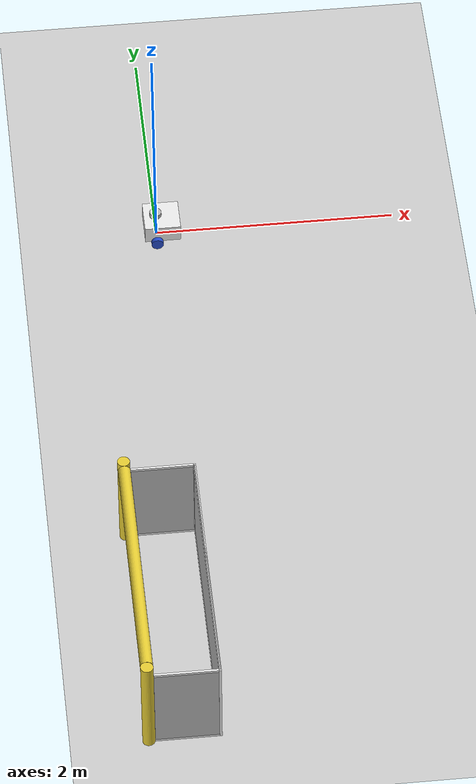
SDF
<sdf version="1.7">
 <world name="default">
  <light name="sun" type="directional">
   <pose>0 0 10 0 -0 0</pose>
   <diffuse>0.8 0.8 0.8 1</diffuse>
   <specular>0.2 0.2 0.2 1</specular>
   <attenuation>
    <range>1000</range>
    <constant>0.9</constant>
    <linear>0.01</linear>
    <quadratic>0.001</quadratic>
   </attenuation>
   <direction>-0.5 0.1 -0.9</direction>
   <spot><inner_angle>0</inner_angle><outer_angle>0</outer_angle><falloff>0</falloff></spot>
  </light>
  <model name="ground_plane">
   <static>1</static>
   <link name="link">
    <collision name="collision">
     <geometry><plane><normal>0 0 1</normal><size>100 100</size></plane></geometry>
     <surface>
      <contact><collide_bitmask>65535</collide_bitmask></contact>
      <friction><ode><mu>100</mu><mu2>50</mu2></ode></friction>
     </surface>
    </collision>
    <visual name="visual">
     <cast_shadows>0</cast_shadows>
     <geometry><plane><normal>0 0 1</normal><size>100 100</size></plane></geometry>
     <material>
      <script><uri>file://media/materials/scripts/gazebo.material</uri><name>Gazebo/Grey</name></script>
     </material>
    </visual>
   </link>
  </model>
  <gravity>0 0 -9.8</gravity>
  <magnetic_field>6e-06 2.3e-05 -4.2e-05</magnetic_field>
  <atmosphere type="adiabatic"/>
  <physics type="ode">
   <max_step_size>0.001</max_step_size>
   <real_time_factor>1</real_time_factor>
   <real_time_update_rate>1000</real_time_update_rate>
  </physics>
  <scene><ambient>0.4 0.4 0.4 1</ambient><background>0.7 0.7 0.7 1</background><shadows>1</shadows></scene>
  <audio><device>default</device></audio>
  <spherical_coordinates>
   <surface_model>EARTH_WGS84</surface_model>
   <latitude_deg>0</latitude_deg>
   <longitude_deg>0</longitude_deg>
   <elevation>0</elevation>
   <heading_deg>0</heading_deg>
  </spherical_coordinates>
  <model name="my_bot">
   <link name="base_link">
    <inertial>
     <pose>0.024375 0 0.132813 0 -0 0</pose>
     <mass>1.6</mass>
     <inertia>
      <ixx>0.0107607</ixx>
      <ixy>0</ixy>
      <ixz>0.00330469</ixz>
      <iyy>0.0130201</iyy>
      <iyz>0</iyz>
      <izz>0.0111094</izz>
     </inertia>
    </inertial>
    <collision name="base_link_fixed_joint_lump__chassis_collision">
     <pose>0.05 0 0.075 0 -0 0</pose>
     <geometry><box><size>0.3 0.3 0.15</size></box></geometry>
    </collision>
    <collision name="base_link_fixed_joint_lump__caster_wheel_collision_1">
     <pose>0.14 0 0 0 -0 0</pose>
     <geometry><sphere><radius>0.05</radius></sphere></geometry>
     <surface><friction><ode><mu>0.001</mu><mu2>0.001</mu2></ode></friction></surface>
    </collision>
    <collision name="base_link_fixed_joint_lump__laser_frame_collision_2">
     <pose>0 0 0.175 0 -0 0</pose>
     <geometry><cylinder><length>0.04</length><radius>0.05</radius></cylinder></geometry>
    </collision>
    <visual name="base_link_fixed_joint_lump__chassis_visual">
     <pose>0.05 0 0.075 0 -0 0</pose>
     <geometry><box><size>0.3 0.3 0.15</size></box></geometry>
     <material>
      <script><name>Gazebo/White</name><uri>file://media/materials/scripts/gazebo.material</uri></script>
     </material>
    </visual>
    <visual name="base_link_fixed_joint_lump__caster_wheel_visual_1">
     <pose>0.14 0 0 0 -0 0</pose>
     <geometry><sphere><radius>0.05</radius></sphere></geometry>
     <material>
      <script><name>Gazebo/Black</name><uri>file://media/materials/scripts/gazebo.material</uri></script>
     </material>
    </visual>
    <visual name="base_link_fixed_joint_lump__laser_frame_visual_2">
     <pose>0 0 0.175 0 -0 0</pose>
     <geometry><cylinder><length>0.04</length><radius>0.05</radius></cylinder></geometry>
    </visual>
    <sensor name="laser" type="ray">
     <visualize>1</visualize>
     <update_rate>10</update_rate>
     <ray>
      <scan>
       <horizontal>
        <samples>360</samples>
        <min_angle>-3.14</min_angle>
        <max_angle>3.14</max_angle>
        <resolution>1</resolution>
       </horizontal>
       <vertical><samples>1</samples><min_angle>0</min_angle><max_angle>0</max_angle></vertical>
      </scan>
      <range><min>0.3</min><max>12</max></range>
     </ray>
     <plugin name="laser_controller" filename="libgazebo_ros_ray_sensor.so">
      <ros><argument>~out:=scan</argument></ros>
      <output_type>sensor_msg/LaserScan</output_type>
      <frame_name>laser_frame</frame_name>
     </plugin>
     <pose>0 0 0.175 0 -0 0</pose>
    </sensor>
   </link>
   <joint name="left_wheel_joint" type="revolute">
    <pose relative_to="base_link">0 0.175 0 -1.5708 0 0</pose>
    <parent>base_link</parent>
    <child>left_wheel</child>
    <axis>
     <xyz>0 0 1</xyz>
     <limit><lower>-1e+16</lower><upper>1e+16</upper></limit>
     <dynamics><spring_reference>0</spring_reference><spring_stiffness>0</spring_stiffness></dynamics>
    </axis>
   </joint>
   <link name="left_wheel">
    <pose relative_to="left_wheel_joint">0 0 0 0 -0 0</pose>
    <inertial>
     <mass>1</mass>
     <inertia>
      <ixx>0.000758333</ixx>
      <ixy>0</ixy>
      <ixz>0</ixz>
      <iyy>0.000758333</iyy>
      <iyz>0</iyz>
      <izz>0.00125</izz>
     </inertia>
    </inertial>
    <collision name="left_wheel_collision">
     <geometry><cylinder><length>0.04</length><radius>0.05</radius></cylinder></geometry>
    </collision>
    <visual name="left_wheel_visual">
     <geometry><cylinder><length>0.04</length><radius>0.05</radius></cylinder></geometry>
     <material>
      <script><name>Gazebo/Blue</name><uri>file://media/materials/scripts/gazebo.material</uri></script>
     </material>
    </visual>
   </link>
   <joint name="right_wheel_joint" type="revolute">
    <pose relative_to="base_link">0 -0.175 0 1.5708 -0 0</pose>
    <parent>base_link</parent>
    <child>right_wheel</child>
    <axis>
     <xyz>0 0 -1</xyz>
     <limit><lower>-1e+16</lower><upper>1e+16</upper></limit>
     <dynamics><spring_reference>0</spring_reference><spring_stiffness>0</spring_stiffness></dynamics>
    </axis>
   </joint>
   <link name="right_wheel">
    <pose relative_to="right_wheel_joint">0 0 0 0 -0 0</pose>
    <inertial>
     <mass>1</mass>
     <inertia>
      <ixx>0.000758333</ixx>
      <ixy>0</ixy>
      <ixz>0</ixz>
      <iyy>0.000758333</iyy>
      <iyz>0</iyz>
      <izz>0.00125</izz>
     </inertia>
    </inertial>
    <collision name="right_wheel_collision">
     <geometry><cylinder><length>0.04</length><radius>0.05</radius></cylinder></geometry>
    </collision>
    <visual name="right_wheel_visual">
     <geometry><cylinder><length>0.04</length><radius>0.05</radius></cylinder></geometry>
     <material>
      <script><name>Gazebo/Blue</name><uri>file://media/materials/scripts/gazebo.material</uri></script>
     </material>
    </visual>
   </link>
   <static>0</static>
   <plugin name="diff_drive" filename="libgazebo_ros_diff_drive.so">
    <left_joint>left_wheel_joint</left_joint>
    <right_joint>right_wheel_joint</right_joint>
    <wheel_separation>0.35</wheel_separation>
    <wheel_diameter>0.1</wheel_diameter>
    <max_wheel_torque>200</max_wheel_torque>
    <max_wheel_acceleration>10.0</max_wheel_acceleration>
    <odometry_frame>odom</odometry_frame>
    <robot_base_frame>base_link</robot_base_frame>
    <publish_odom>1</publish_odom>
    <publish_odom_tf>1</publish_odom_tf>
    <publish_wheel_tf>1</publish_wheel_tf>
   </plugin>
   <pose>-0.002655 2.8e-05 0.06 0 1e-06 0.001493</pose>
  </model>
  <model name="robocup_3d_goal">
   <static>1</static>
   <link name="left_post">
    <pose>0 1.05 0.45 0 -0 0</pose>
    <collision name="collision">
     <geometry><cylinder><radius>0.05</radius><length>0.9</length></cylinder></geometry>
    </collision>
    <visual name="visual">
     <geometry><cylinder><radius>0.05</radius><length>0.9</length></cylinder></geometry>
     <material>
      <script><uri>file://media/materials/scripts/gazebo.material</uri><name>Gazebo/ZincYellow</name></script>
     </material>
    </visual>
   </link>
   <link name="left_support_horiz_lower">
    <pose>0.3 1.05 0.01 0 -0 0</pose>
    <collision name="collision"><geometry><box><size>0.5 0.02 0.02</size></box></geometry></collision>
    <visual name="visual">
     <geometry><box><size>0.5 0.02 0.02</size></box></geometry>
     <material>
      <script><uri>file://media/materials/scripts/gazebo.material</uri><name>Gazebo/White</name></script>
     </material>
    </visual>
   </link>
   <link name="left_support_horiz_upper">
    <pose>0.3 1.05 0.79 0 -0 0</pose>
    <collision name="collision"><geometry><box><size>0.5 0.02 0.02</size></box></geometry></collision>
    <visual name="visual">
     <geometry><box><size>0.5 0.02 0.02</size></box></geometry>
     <material>
      <script><uri>file://media/materials/scripts/gazebo.material</uri><name>Gazebo/White</name></script>
     </material>
    </visual>
   </link>
   <link name="left_support_vertical">
    <pose>0.56 1.05 0.4 3.14159 1.57079 3.14159</pose>
    <collision name="collision"><geometry><box><size>0.8 0.02 0.02</size></box></geometry></collision>
    <visual name="visual">
     <geometry><box><size>0.8 0.02 0.02</size></box></geometry>
     <material>
      <script><uri>file://media/materials/scripts/gazebo.material</uri><name>Gazebo/White</name></script>
     </material>
    </visual>
   </link>
   <link name="right_support_horiz_lower">
    <pose>0.3 -1.05 0.01 0 -0 0</pose>
    <collision name="collision"><geometry><box><size>0.5 0.02 0.02</size></box></geometry></collision>
    <visual name="visual">
     <geometry><box><size>0.5 0.02 0.02</size></box></geometry>
     <material>
      <script><uri>file://media/materials/scripts/gazebo.material</uri><name>Gazebo/White</name></script>
     </material>
    </visual>
   </link>
   <link name="right_support_horiz_upper">
    <pose>0.3 -1.05 0.79 0 -0 0</pose>
    <collision name="collision"><geometry><box><size>0.5 0.02 0.02</size></box></geometry></collision>
    <visual name="visual">
     <geometry><box><size>0.5 0.02 0.02</size></box></geometry>
     <material>
      <script><uri>file://media/materials/scripts/gazebo.material</uri><name>Gazebo/White</name></script>
     </material>
    </visual>
   </link>
   <link name="right_support_vertical">
    <pose>0.56 -1.05 0.4 3.14159 1.57079 3.14159</pose>
    <collision name="collision"><geometry><box><size>0.8 0.02 0.02</size></box></geometry></collision>
    <visual name="visual">
     <geometry><box><size>0.8 0.02 0.02</size></box></geometry>
     <material>
      <script><uri>file://media/materials/scripts/gazebo.material</uri><name>Gazebo/White</name></script>
     </material>
    </visual>
   </link>
   <link name="center_support_horiz_lower">
    <pose>0.56 0 0.01 3.14159 1.57079 3.14159</pose>
    <collision name="collision"><geometry><box><size>0.02 2.08 0.02</size></box></geometry></collision>
    <visual name="visual">
     <geometry><box><size>0.02 2.08 0.02</size></box></geometry>
     <material>
      <script><uri>file://media/materials/scripts/gazebo.material</uri><name>Gazebo/White</name></script>
     </material>
    </visual>
   </link>
   <link name="center_support_horiz_upper">
    <pose>0.56 0 0.79 3.14159 1.57079 3.14159</pose>
    <collision name="collision"><geometry><box><size>0.02 2.08 0.02</size></box></geometry></collision>
    <visual name="visual">
     <geometry><box><size>0.02 2.08 0.02</size></box></geometry>
     <material>
      <script><uri>file://media/materials/scripts/gazebo.material</uri><name>Gazebo/White</name></script>
     </material>
    </visual>
   </link>
   <link name="right_post">
    <pose>0 -1.05 0.45 0 -0 0</pose>
    <collision name="collision">
     <geometry><cylinder><radius>0.05</radius><length>0.9</length></cylinder></geometry>
    </collision>
    <visual name="visual">
     <geometry><cylinder><radius>0.05</radius><length>0.9</length></cylinder></geometry>
     <material>
      <script><uri>file://media/materials/scripts/gazebo.material</uri><name>Gazebo/ZincYellow</name></script>
     </material>
    </visual>
   </link>
   <link name="crossbar">
    <pose>0 0 0.85 1.57 1.57 0</pose>
    <collision name="collision">
     <geometry><cylinder><radius>0.05</radius><length>2</length></cylinder></geometry>
    </collision>
    <visual name="visual">
     <geometry><cylinder><radius>0.05</radius><length>2</length></cylinder></geometry>
     <material>
      <script><uri>file://media/materials/scripts/gazebo.material</uri><name>Gazebo/ZincYellow</name></script>
     </material>
    </visual>
   </link>
   <link name="center_net">
    <pose>0.56 0 0.4 0 -0 0</pose>
    <collision name="collision"><geometry><box><size>0.01 2.1 0.8</size></box></geometry></collision>
    <visual name="visual">
     <geometry><box><size>0.01 2.1 0.8</size></box></geometry>
     <material>
      <script>
       <uri>model://robocup09_spl_field/materials/scripts/</uri>
       <uri>model://robocup09_spl_field/materials/textures/</uri>
       <name>RoboCup/Net</name>
      </script>
     </material>
    </visual>
   </link>
   <link name="left_net">
    <pose>0.3 1.05 0.4 0 -0 0</pose>
    <collision name="collision"><geometry><box><size>0.5 0.01 0.76</size></box></geometry></collision>
    <visual name="visual">
     <geometry><box><size>0.5 0.01 0.76</size></box></geometry>
     <material>
      <script>
       <uri>model://robocup09_spl_field/materials/scripts/</uri>
       <uri>model://robocup09_spl_field/materials/textures/</uri>
       <name>RoboCup/Net</name>
      </script>
     </material>
    </visual>
   </link>
   <link name="right_net">
    <pose>0.3 -1.05 0.4 0 -0 0</pose>
    <collision name="collision"><geometry><box><size>0.5 0.01 0.76</size></box></geometry></collision>
    <visual name="visual">
     <geometry><box><size>0.5 0.01 0.76</size></box></geometry>
     <material>
      <script>
       <uri>model://robocup09_spl_field/materials/scripts/</uri>
       <uri>model://robocup09_spl_field/materials/textures/</uri>
       <name>RoboCup/Net</name>
      </script>
     </material>
    </visual>
   </link>
   <pose>-0.53831 -4.37162 0 0 -0 0</pose>
  </model>
 </world>
</sdf>
